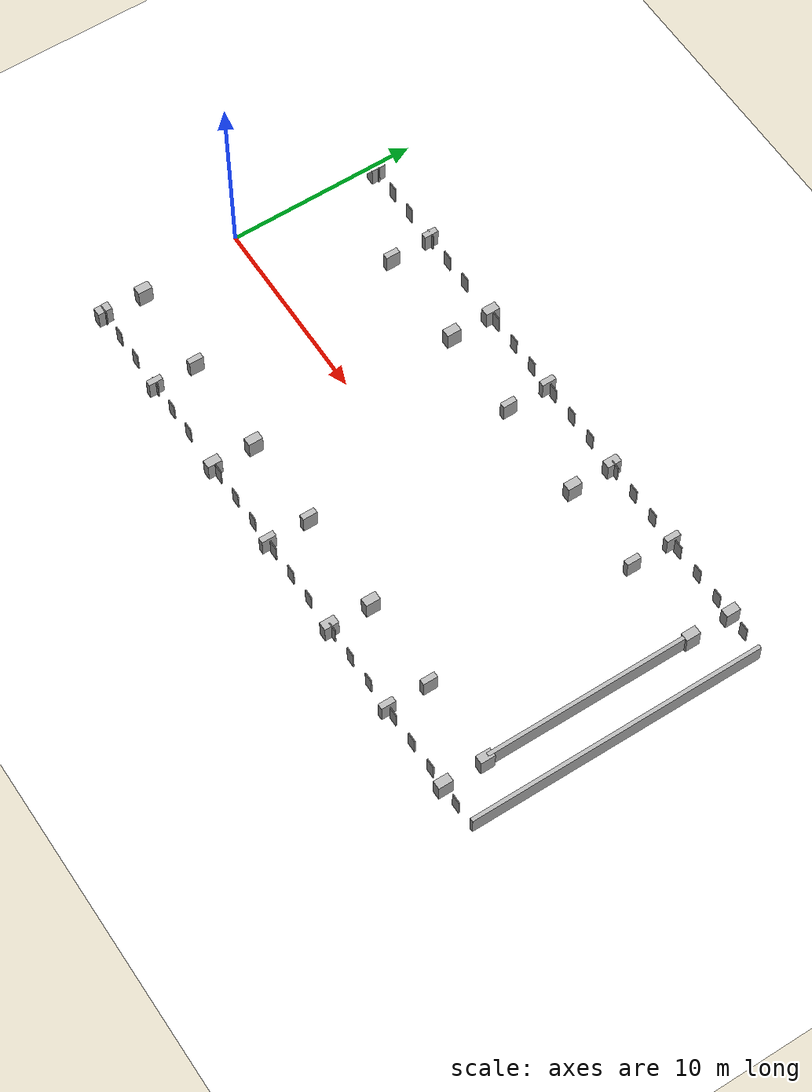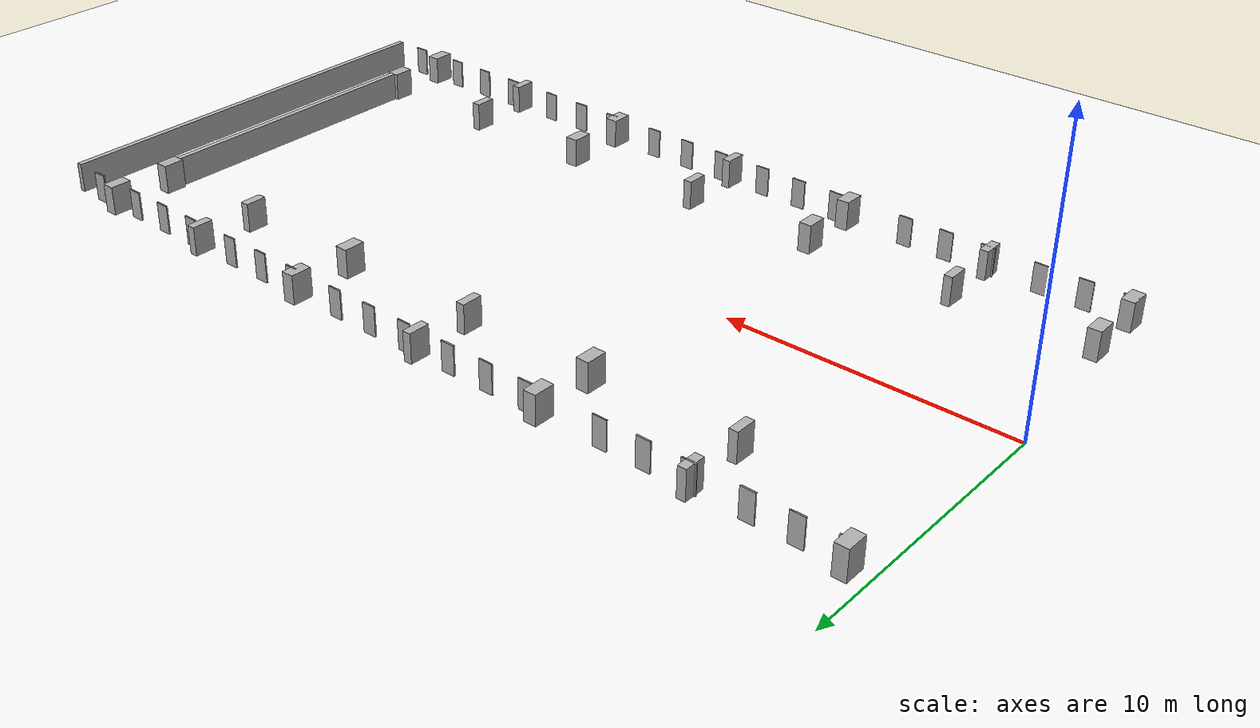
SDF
<sdf version="1.7">
 <world name="simple_corridor">
  <model name="ground_plane">
   <static>true</static>
   <link name="link">
    <collision name="collision">
     <geometry><plane><normal>0 0 1</normal><size>100 100</size></plane></geometry>
    </collision>
    <visual name="visual">
     <geometry><plane><normal>0 0 1</normal><size>100 100</size></plane></geometry>
     <material><ambient>1 1 1 1</ambient><diffuse>1 1 1 1</diffuse></material>
    </visual>
   </link>
  </model>
  <model name="wall_start_on">
   <static>true</static>
   <pose>30 0 0 0 0 0</pose>
   <link name="link">
    <collision name="collision"><geometry><box><size>0.2 10.8 2.0</size></box></geometry></collision>
    <visual name="visual">
     <geometry><box><size>0.2 10.8 2.0</size></box></geometry>
     <material><diffuse>0.7 0.7 0.7 1</diffuse></material>
    </visual>
   </link>
  </model>
  <model name="column_small_left_8">
   <static>true</static>
   <pose>5.45 5.5 0 0 0 0</pose>
   <link name="link">
    <collision name="collision"><geometry><box><size>0.3 0.75 2.0</size></box></geometry></collision>
    <visual name="visual">
     <geometry><box><size>0.3 0.75 2.0</size></box></geometry>
     <material><diffuse>0.7 0.7 0.7 1</diffuse></material>
    </visual>
   </link>
  </model>
  <model name="column_large_left_9">
   <static>true</static>
   <pose>10.7 5.5 0 0 0 0</pose>
   <link name="link">
    <collision name="collision"><geometry><box><size>0.45 0.75 2.0</size></box></geometry></collision>
    <visual name="visual">
     <geometry><box><size>0.45 0.75 2.0</size></box></geometry>
     <material><diffuse>0.7 0.7 0.7 1</diffuse></material>
    </visual>
   </link>
  </model>
  <model name="column_small_left_10">
   <static>true</static>
   <pose>15.5 5.5 0 0 0 0</pose>
   <link name="link">
    <collision name="collision"><geometry><box><size>0.3 0.75 2.0</size></box></geometry></collision>
    <visual name="visual">
     <geometry><box><size>0.3 0.75 2.0</size></box></geometry>
     <material><diffuse>0.7 0.7 0.7 1</diffuse></material>
    </visual>
   </link>
  </model>
  <model name="column_large_left_11">
   <static>true</static>
   <pose>20.75 5.5 0 0 0 0</pose>
   <link name="link">
    <collision name="collision"><geometry><box><size>0.45 0.75 2.0</size></box></geometry></collision>
    <visual name="visual">
     <geometry><box><size>0.45 0.75 2.0</size></box></geometry>
     <material><diffuse>0.7 0.7 0.7 1</diffuse></material>
    </visual>
   </link>
  </model>
  <model name="column_small_left_12">
   <static>true</static>
   <pose>25.5 5.5 0 0 0 0</pose>
   <link name="link">
    <collision name="collision"><geometry><box><size>0.3 0.75 2.0</size></box></geometry></collision>
    <visual name="visual">
     <geometry><box><size>0.3 0.75 2.0</size></box></geometry>
     <material><diffuse>0.7 0.7 0.7 1</diffuse></material>
    </visual>
   </link>
  </model>
  <model name="column_large_left_13">
   <static>true</static>
   <pose>30 5.5 0 0 0 0</pose>
   <link name="link">
    <collision name="collision"><geometry><box><size>0.45 0.75 2.0</size></box></geometry></collision>
    <visual name="visual">
     <geometry><box><size>0.45 0.75 2.0</size></box></geometry>
     <material><diffuse>0.7 0.7 0.7 1</diffuse></material>
    </visual>
   </link>
  </model>
  <model name="column_large_right_7">
   <static>true</static>
   <pose>0.65 -5.5 0 0 0 0</pose>
   <link name="link">
    <collision name="collision"><geometry><box><size>0.45 0.75 2.0</size></box></geometry></collision>
    <visual name="visual">
     <geometry><box><size>0.45 0.75 2.0</size></box></geometry>
     <material><diffuse>0.7 0.7 0.7 1</diffuse></material>
    </visual>
   </link>
  </model>
  <model name="column_small_right_8">
   <static>true</static>
   <pose>5.45 -5.5 0 0 0 0</pose>
   <link name="link">
    <collision name="collision"><geometry><box><size>0.3 0.75 2.0</size></box></geometry></collision>
    <visual name="visual">
     <geometry><box><size>0.3 0.75 2.0</size></box></geometry>
     <material><diffuse>0.7 0.7 0.7 1</diffuse></material>
    </visual>
   </link>
  </model>
  <model name="column_large_right_9">
   <static>true</static>
   <pose>10.7 -5.5 0 0 0 0</pose>
   <link name="link">
    <collision name="collision"><geometry><box><size>0.45 0.75 2.0</size></box></geometry></collision>
    <visual name="visual">
     <geometry><box><size>0.45 0.75 2.0</size></box></geometry>
     <material><diffuse>0.7 0.7 0.7 1</diffuse></material>
    </visual>
   </link>
  </model>
  <model name="column_small_right_10">
   <static>true</static>
   <pose>15.5 -5.5 0 0 0 0</pose>
   <link name="link">
    <collision name="collision"><geometry><box><size>0.3 0.75 2.0</size></box></geometry></collision>
    <visual name="visual">
     <geometry><box><size>0.3 0.75 2.0</size></box></geometry>
     <material><diffuse>0.7 0.7 0.7 1</diffuse></material>
    </visual>
   </link>
  </model>
  <model name="column_large_right_11">
   <static>true</static>
   <pose>20.75 -5.5 0 0 0 0</pose>
   <link name="link">
    <collision name="collision"><geometry><box><size>0.45 0.75 2.0</size></box></geometry></collision>
    <visual name="visual">
     <geometry><box><size>0.45 0.75 2.0</size></box></geometry>
     <material><diffuse>0.7 0.7 0.7 1</diffuse></material>
    </visual>
   </link>
  </model>
  <model name="column_small_right_12">
   <static>true</static>
   <pose>25.5 -5.5 0 0 0 0</pose>
   <link name="link">
    <collision name="collision"><geometry><box><size>0.3 0.75 2.0</size></box></geometry></collision>
    <visual name="visual">
     <geometry><box><size>0.3 0.75 2.0</size></box></geometry>
     <material><diffuse>0.7 0.7 0.7 1</diffuse></material>
    </visual>
   </link>
  </model>
  <model name="column_large_right_13">
   <static>true</static>
   <pose>30 -5.5 0 0 0 0</pose>
   <link name="link">
    <collision name="collision"><geometry><box><size>0.45 0.75 2.0</size></box></geometry></collision>
    <visual name="visual">
     <geometry><box><size>0.45 0.75 2.0</size></box></geometry>
     <material><diffuse>0.7 0.7 0.7 1</diffuse></material>
    </visual>
   </link>
  </model>
  <model name="ban_large_left_7">
   <static>true</static>
   <pose>0.65 7.7 0 0 0 0</pose>
   <link name="link">
    <collision name="collision"><geometry><box><size>0.45 0.75 2.0</size></box></geometry></collision>
    <visual name="visual">
     <geometry><box><size>0.45 0.75 2.0</size></box></geometry>
     <material><diffuse>0.7 0.7 0.7 1</diffuse></material>
    </visual>
   </link>
  </model>
  <model name="ban_small_left_8">
   <static>true</static>
   <pose>5.45 7.7 0 0 0 0</pose>
   <link name="link">
    <collision name="collision"><geometry><box><size>0.3 0.75 2.0</size></box></geometry></collision>
    <visual name="visual">
     <geometry><box><size>0.3 0.75 2.0</size></box></geometry>
     <material><diffuse>0.7 0.7 0.7 1</diffuse></material>
    </visual>
   </link>
  </model>
  <model name="ban_large_left_9">
   <static>true</static>
   <pose>10.7 7.7 0 0 0 0</pose>
   <link name="link">
    <collision name="collision"><geometry><box><size>0.45 0.75 2.0</size></box></geometry></collision>
    <visual name="visual">
     <geometry><box><size>0.45 0.75 2.0</size></box></geometry>
     <material><diffuse>0.7 0.7 0.7 1</diffuse></material>
    </visual>
   </link>
  </model>
  <model name="ban_small_left_10">
   <static>true</static>
   <pose>15.5 7.7 0 0 0 0</pose>
   <link name="link">
    <collision name="collision"><geometry><box><size>0.3 0.75 2.0</size></box></geometry></collision>
    <visual name="visual">
     <geometry><box><size>0.3 0.75 2.0</size></box></geometry>
     <material><diffuse>0.7 0.7 0.7 1</diffuse></material>
    </visual>
   </link>
  </model>
  <model name="ban_large_left_11">
   <static>true</static>
   <pose>20.75 7.7 0 0 0 0</pose>
   <link name="link">
    <collision name="collision"><geometry><box><size>0.45 0.75 2.0</size></box></geometry></collision>
    <visual name="visual">
     <geometry><box><size>0.45 0.75 2.0</size></box></geometry>
     <material><diffuse>0.7 0.7 0.7 1</diffuse></material>
    </visual>
   </link>
  </model>
  <model name="ban_small_left_12">
   <static>true</static>
   <pose>25.5 7.7 0 0 0 0</pose>
   <link name="link">
    <collision name="collision"><geometry><box><size>0.3 0.75 2.0</size></box></geometry></collision>
    <visual name="visual">
     <geometry><box><size>0.3 0.75 2.0</size></box></geometry>
     <material><diffuse>0.7 0.7 0.7 1</diffuse></material>
    </visual>
   </link>
  </model>
  <model name="ban_large_left_13">
   <static>true</static>
   <pose>30 7.7 0 0 0 0</pose>
   <link name="link">
    <collision name="collision"><geometry><box><size>0.45 0.75 2.0</size></box></geometry></collision>
    <visual name="visual">
     <geometry><box><size>0.45 0.75 2.0</size></box></geometry>
     <material><diffuse>0.7 0.7 0.7 1</diffuse></material>
    </visual>
   </link>
  </model>
  <model name="ban_large_right_7">
   <static>true</static>
   <pose>0.65 -7.7 0 0 0 0</pose>
   <link name="link">
    <collision name="collision"><geometry><box><size>0.45 0.75 2.0</size></box></geometry></collision>
    <visual name="visual">
     <geometry><box><size>0.45 0.75 2.0</size></box></geometry>
     <material><diffuse>0.7 0.7 0.7 1</diffuse></material>
    </visual>
   </link>
  </model>
  <model name="ban_small_right_8">
   <static>true</static>
   <pose>5.45 -7.7 0 0 0 0</pose>
   <link name="link">
    <collision name="collision"><geometry><box><size>0.3 0.75 2.0</size></box></geometry></collision>
    <visual name="visual">
     <geometry><box><size>0.3 0.75 2.0</size></box></geometry>
     <material><diffuse>0.7 0.7 0.7 1</diffuse></material>
    </visual>
   </link>
  </model>
  <model name="ban_large_right_9">
   <static>true</static>
   <pose>10.7 -7.7 0 0 0 0</pose>
   <link name="link">
    <collision name="collision"><geometry><box><size>0.45 0.75 2.0</size></box></geometry></collision>
    <visual name="visual">
     <geometry><box><size>0.45 0.75 2.0</size></box></geometry>
     <material><diffuse>0.7 0.7 0.7 1</diffuse></material>
    </visual>
   </link>
  </model>
  <model name="ban_small_right_10">
   <static>true</static>
   <pose>15.5 -7.7 0 0 0 0</pose>
   <link name="link">
    <collision name="collision"><geometry><box><size>0.3 0.75 2.0</size></box></geometry></collision>
    <visual name="visual">
     <geometry><box><size>0.3 0.75 2.0</size></box></geometry>
     <material><diffuse>0.7 0.7 0.7 1</diffuse></material>
    </visual>
   </link>
  </model>
  <model name="ban_large_right_11">
   <static>true</static>
   <pose>20.75 -7.7 0 0 0 0</pose>
   <link name="link">
    <collision name="collision"><geometry><box><size>0.45 0.75 2.0</size></box></geometry></collision>
    <visual name="visual">
     <geometry><box><size>0.45 0.75 2.0</size></box></geometry>
     <material><diffuse>0.7 0.7 0.7 1</diffuse></material>
    </visual>
   </link>
  </model>
  <model name="ban_small_right_12">
   <static>true</static>
   <pose>25.5 -7.7 0 0 0 0</pose>
   <link name="link">
    <collision name="collision"><geometry><box><size>0.3 0.75 2.0</size></box></geometry></collision>
    <visual name="visual">
     <geometry><box><size>0.3 0.75 2.0</size></box></geometry>
     <material><diffuse>0.7 0.7 0.7 1</diffuse></material>
    </visual>
   </link>
  </model>
  <model name="ban_large_right_13">
   <static>true</static>
   <pose>30 -7.7 0 0 0 0</pose>
   <link name="link">
    <collision name="collision"><geometry><box><size>0.45 0.75 2.0</size></box></geometry></collision>
    <visual name="visual">
     <geometry><box><size>0.45 0.75 2.0</size></box></geometry>
     <material><diffuse>0.7 0.7 0.7 1</diffuse></material>
    </visual>
   </link>
  </model>
  <model name="bar_left_19">
   <static>true</static>
   <pose>0.7 7.7 0 0 0 0</pose>
   <link name="link">
    <collision name="collision"><geometry><box><size>0.5 0.05 2.0</size></box></geometry></collision>
    <visual name="visual">
     <geometry><box><size>0.5 0.05 2.0</size></box></geometry>
     <material><diffuse>0.7 0.7 0.7 1</diffuse></material>
    </visual>
   </link>
  </model>
  <model name="bar_left_20">
   <static>true</static>
   <pose>2.15 7.7 0 0 0 0</pose>
   <link name="link">
    <collision name="collision"><geometry><box><size>0.5 0.05 2.0</size></box></geometry></collision>
    <visual name="visual">
     <geometry><box><size>0.5 0.05 2.0</size></box></geometry>
     <material><diffuse>0.7 0.7 0.7 1</diffuse></material>
    </visual>
   </link>
  </model>
  <model name="bar_left_21">
   <static>true</static>
   <pose>3.65 7.7 0 0 0 0</pose>
   <link name="link">
    <collision name="collision"><geometry><box><size>0.5 0.05 2.0</size></box></geometry></collision>
    <visual name="visual">
     <geometry><box><size>0.5 0.05 2.0</size></box></geometry>
     <material><diffuse>0.7 0.7 0.7 1</diffuse></material>
    </visual>
   </link>
  </model>
  <model name="bar_left_22">
   <static>true</static>
   <pose>5.5 7.7 0 0 0 0</pose>
   <link name="link">
    <collision name="collision"><geometry><box><size>0.5 0.05 2.0</size></box></geometry></collision>
    <visual name="visual">
     <geometry><box><size>0.5 0.05 2.0</size></box></geometry>
     <material><diffuse>0.7 0.7 0.7 1</diffuse></material>
    </visual>
   </link>
  </model>
  <model name="bar_left_23">
   <static>true</static>
   <pose>7 7.7 0 0 0 0</pose>
   <link name="link">
    <collision name="collision"><geometry><box><size>0.5 0.05 2.0</size></box></geometry></collision>
    <visual name="visual">
     <geometry><box><size>0.5 0.05 2.0</size></box></geometry>
     <material><diffuse>0.7 0.7 0.7 1</diffuse></material>
    </visual>
   </link>
  </model>
  <model name="bar_left_24">
   <static>true</static>
   <pose>8.5 7.7 0 0 0 0</pose>
   <link name="link">
    <collision name="collision"><geometry><box><size>0.5 0.05 2.0</size></box></geometry></collision>
    <visual name="visual">
     <geometry><box><size>0.5 0.05 2.0</size></box></geometry>
     <material><diffuse>0.7 0.7 0.7 1</diffuse></material>
    </visual>
   </link>
  </model>
  <model name="bar_left_25">
   <static>true</static>
   <pose>11.2 7.7 0 0 0 0</pose>
   <link name="link">
    <collision name="collision"><geometry><box><size>0.5 0.05 2.0</size></box></geometry></collision>
    <visual name="visual">
     <geometry><box><size>0.5 0.05 2.0</size></box></geometry>
     <material><diffuse>0.7 0.7 0.7 1</diffuse></material>
    </visual>
   </link>
  </model>
  <model name="bar_left_26">
   <static>true</static>
   <pose>12.7 7.7 0 0 0 0</pose>
   <link name="link">
    <collision name="collision"><geometry><box><size>0.5 0.05 2.0</size></box></geometry></collision>
    <visual name="visual">
     <geometry><box><size>0.5 0.05 2.0</size></box></geometry>
     <material><diffuse>0.7 0.7 0.7 1</diffuse></material>
    </visual>
   </link>
  </model>
  <model name="bar_left_27">
   <static>true</static>
   <pose>14.2 7.7 0 0 0 0</pose>
   <link name="link">
    <collision name="collision"><geometry><box><size>0.5 0.05 2.0</size></box></geometry></collision>
    <visual name="visual">
     <geometry><box><size>0.5 0.05 2.0</size></box></geometry>
     <material><diffuse>0.7 0.7 0.7 1</diffuse></material>
    </visual>
   </link>
  </model>
  <model name="bar_left_28">
   <static>true</static>
   <pose>16 7.7 0 0 0 0</pose>
   <link name="link">
    <collision name="collision"><geometry><box><size>0.5 0.05 2.0</size></box></geometry></collision>
    <visual name="visual">
     <geometry><box><size>0.5 0.05 2.0</size></box></geometry>
     <material><diffuse>0.7 0.7 0.7 1</diffuse></material>
    </visual>
   </link>
  </model>
  <model name="bar_left_29">
   <static>true</static>
   <pose>17.5 7.7 0 0 0 0</pose>
   <link name="link">
    <collision name="collision"><geometry><box><size>0.5 0.05 2.0</size></box></geometry></collision>
    <visual name="visual">
     <geometry><box><size>0.5 0.05 2.0</size></box></geometry>
     <material><diffuse>0.7 0.7 0.7 1</diffuse></material>
    </visual>
   </link>
  </model>
  <model name="bar_left_30">
   <static>true</static>
   <pose>19 7.7 0 0 0 0</pose>
   <link name="link">
    <collision name="collision"><geometry><box><size>0.5 0.05 2.0</size></box></geometry></collision>
    <visual name="visual">
     <geometry><box><size>0.5 0.05 2.0</size></box></geometry>
     <material><diffuse>0.7 0.7 0.7 1</diffuse></material>
    </visual>
   </link>
  </model>
  <model name="bar_left_31">
   <static>true</static>
   <pose>21 7.7 0 0 0 0</pose>
   <link name="link">
    <collision name="collision"><geometry><box><size>0.5 0.05 2.0</size></box></geometry></collision>
    <visual name="visual">
     <geometry><box><size>0.5 0.05 2.0</size></box></geometry>
     <material><diffuse>0.7 0.7 0.7 1</diffuse></material>
    </visual>
   </link>
  </model>
  <model name="bar_left_32">
   <static>true</static>
   <pose>22.5 7.7 0 0 0 0</pose>
   <link name="link">
    <collision name="collision"><geometry><box><size>0.5 0.05 2.0</size></box></geometry></collision>
    <visual name="visual">
     <geometry><box><size>0.5 0.05 2.0</size></box></geometry>
     <material><diffuse>0.7 0.7 0.7 1</diffuse></material>
    </visual>
   </link>
  </model>
  <model name="bar_left_33">
   <static>true</static>
   <pose>24 7.7 0 0 0 0</pose>
   <link name="link">
    <collision name="collision"><geometry><box><size>0.5 0.05 2.0</size></box></geometry></collision>
    <visual name="visual">
     <geometry><box><size>0.5 0.05 2.0</size></box></geometry>
     <material><diffuse>0.7 0.7 0.7 1</diffuse></material>
    </visual>
   </link>
  </model>
  <model name="bar_left_34">
   <static>true</static>
   <pose>26 7.7 0 0 0 0</pose>
   <link name="link">
    <collision name="collision"><geometry><box><size>0.5 0.05 2.0</size></box></geometry></collision>
    <visual name="visual">
     <geometry><box><size>0.5 0.05 2.0</size></box></geometry>
     <material><diffuse>0.7 0.7 0.7 1</diffuse></material>
    </visual>
   </link>
  </model>
  <model name="bar_left_35">
   <static>true</static>
   <pose>27.5 7.7 0 0 0 0</pose>
   <link name="link">
    <collision name="collision"><geometry><box><size>0.5 0.05 2.0</size></box></geometry></collision>
    <visual name="visual">
     <geometry><box><size>0.5 0.05 2.0</size></box></geometry>
     <material><diffuse>0.7 0.7 0.7 1</diffuse></material>
    </visual>
   </link>
  </model>
  <model name="bar_left_36">
   <static>true</static>
   <pose>29 7.7 0 0 0 0</pose>
   <link name="link">
    <collision name="collision"><geometry><box><size>0.5 0.05 2.0</size></box></geometry></collision>
    <visual name="visual">
     <geometry><box><size>0.5 0.05 2.0</size></box></geometry>
     <material><diffuse>0.7 0.7 0.7 1</diffuse></material>
    </visual>
   </link>
  </model>
  <model name="bar_left_37">
   <static>true</static>
   <pose>31 7.7 0 0 0 0</pose>
   <link name="link">
    <collision name="collision"><geometry><box><size>0.5 0.05 2.0</size></box></geometry></collision>
    <visual name="visual">
     <geometry><box><size>0.5 0.05 2.0</size></box></geometry>
     <material><diffuse>0.7 0.7 0.7 1</diffuse></material>
    </visual>
   </link>
  </model>
  <model name="bar_right_19">
   <static>true</static>
   <pose>0.7 -7.7 0 0 0 0</pose>
   <link name="link">
    <collision name="collision"><geometry><box><size>0.5 0.05 2.0</size></box></geometry></collision>
    <visual name="visual">
     <geometry><box><size>0.5 0.05 2.0</size></box></geometry>
     <material><diffuse>0.7 0.7 0.7 1</diffuse></material>
    </visual>
   </link>
  </model>
  <model name="bar_right_20">
   <static>true</static>
   <pose>2.15 -7.7 0 0 0 0</pose>
   <link name="link">
    <collision name="collision"><geometry><box><size>0.5 0.05 2.0</size></box></geometry></collision>
    <visual name="visual">
     <geometry><box><size>0.5 0.05 2.0</size></box></geometry>
     <material><diffuse>0.7 0.7 0.7 1</diffuse></material>
    </visual>
   </link>
  </model>
  <model name="bar_right_21">
   <static>true</static>
   <pose>3.65 -7.7 0 0 0 0</pose>
   <link name="link">
    <collision name="collision"><geometry><box><size>0.5 0.05 2.0</size></box></geometry></collision>
    <visual name="visual">
     <geometry><box><size>0.5 0.05 2.0</size></box></geometry>
     <material><diffuse>0.7 0.7 0.7 1</diffuse></material>
    </visual>
   </link>
  </model>
  <model name="bar_right_22">
   <static>true</static>
   <pose>5.5 -7.7 0 0 0 0</pose>
   <link name="link">
    <collision name="collision"><geometry><box><size>0.5 0.05 2.0</size></box></geometry></collision>
    <visual name="visual">
     <geometry><box><size>0.5 0.05 2.0</size></box></geometry>
     <material><diffuse>0.7 0.7 0.7 1</diffuse></material>
    </visual>
   </link>
  </model>
  <model name="bar_right_23">
   <static>true</static>
   <pose>7 -7.7 0 0 0 0</pose>
   <link name="link">
    <collision name="collision"><geometry><box><size>0.5 0.05 2.0</size></box></geometry></collision>
    <visual name="visual">
     <geometry><box><size>0.5 0.05 2.0</size></box></geometry>
     <material><diffuse>0.7 0.7 0.7 1</diffuse></material>
    </visual>
   </link>
  </model>
  <model name="bar_right_24">
   <static>true</static>
   <pose>8.5 -7.7 0 0 0 0</pose>
   <link name="link">
    <collision name="collision"><geometry><box><size>0.5 0.05 2.0</size></box></geometry></collision>
    <visual name="visual">
     <geometry><box><size>0.5 0.05 2.0</size></box></geometry>
     <material><diffuse>0.7 0.7 0.7 1</diffuse></material>
    </visual>
   </link>
  </model>
  <model name="bar_right_25">
   <static>true</static>
   <pose>11.2 -7.7 0 0 0 0</pose>
   <link name="link">
    <collision name="collision"><geometry><box><size>0.5 0.05 2.0</size></box></geometry></collision>
    <visual name="visual">
     <geometry><box><size>0.5 0.05 2.0</size></box></geometry>
     <material><diffuse>0.7 0.7 0.7 1</diffuse></material>
    </visual>
   </link>
  </model>
  <model name="bar_right_26">
   <static>true</static>
   <pose>12.7 -7.7 0 0 0 0</pose>
   <link name="link">
    <collision name="collision"><geometry><box><size>0.5 0.05 2.0</size></box></geometry></collision>
    <visual name="visual">
     <geometry><box><size>0.5 0.05 2.0</size></box></geometry>
     <material><diffuse>0.7 0.7 0.7 1</diffuse></material>
    </visual>
   </link>
  </model>
  <model name="bar_right_27">
   <static>true</static>
   <pose>14.2 -7.7 0 0 0 0</pose>
   <link name="link">
    <collision name="collision"><geometry><box><size>0.5 0.05 2.0</size></box></geometry></collision>
    <visual name="visual">
     <geometry><box><size>0.5 0.05 2.0</size></box></geometry>
     <material><diffuse>0.7 0.7 0.7 1</diffuse></material>
    </visual>
   </link>
  </model>
  <model name="bar_right_28">
   <static>true</static>
   <pose>16 -7.7 0 0 0 0</pose>
   <link name="link">
    <collision name="collision"><geometry><box><size>0.5 0.05 2.0</size></box></geometry></collision>
    <visual name="visual">
     <geometry><box><size>0.5 0.05 2.0</size></box></geometry>
     <material><diffuse>0.7 0.7 0.7 1</diffuse></material>
    </visual>
   </link>
  </model>
  <model name="bar_right_29">
   <static>true</static>
   <pose>17.5 -7.7 0 0 0 0</pose>
   <link name="link">
    <collision name="collision"><geometry><box><size>0.5 0.05 2.0</size></box></geometry></collision>
    <visual name="visual">
     <geometry><box><size>0.5 0.05 2.0</size></box></geometry>
     <material><diffuse>0.7 0.7 0.7 1</diffuse></material>
    </visual>
   </link>
  </model>
  <model name="bar_right_30">
   <static>true</static>
   <pose>19 -7.7 0 0 0 0</pose>
   <link name="link">
    <collision name="collision"><geometry><box><size>0.5 0.05 2.0</size></box></geometry></collision>
    <visual name="visual">
     <geometry><box><size>0.5 0.05 2.0</size></box></geometry>
     <material><diffuse>0.7 0.7 0.7 1</diffuse></material>
    </visual>
   </link>
  </model>
  <model name="bar_right_31">
   <static>true</static>
   <pose>21 -7.7 0 0 0 0</pose>
   <link name="link">
    <collision name="collision"><geometry><box><size>0.5 0.05 2.0</size></box></geometry></collision>
    <visual name="visual">
     <geometry><box><size>0.5 0.05 2.0</size></box></geometry>
     <material><diffuse>0.7 0.7 0.7 1</diffuse></material>
    </visual>
   </link>
  </model>
  <model name="bar_right_32">
   <static>true</static>
   <pose>22.5 -7.7 0 0 0 0</pose>
   <link name="link">
    <collision name="collision"><geometry><box><size>0.5 0.05 2.0</size></box></geometry></collision>
    <visual name="visual">
     <geometry><box><size>0.5 0.05 2.0</size></box></geometry>
     <material><diffuse>0.7 0.7 0.7 1</diffuse></material>
    </visual>
   </link>
  </model>
  <model name="bar_right_33">
   <static>true</static>
   <pose>24 -7.7 0 0 0 0</pose>
   <link name="link">
    <collision name="collision"><geometry><box><size>0.5 0.05 2.0</size></box></geometry></collision>
    <visual name="visual">
     <geometry><box><size>0.5 0.05 2.0</size></box></geometry>
     <material><diffuse>0.7 0.7 0.7 1</diffuse></material>
    </visual>
   </link>
  </model>
  <model name="bar_right_34">
   <static>true</static>
   <pose>26 -7.7 0 0 0 0</pose>
   <link name="link">
    <collision name="collision"><geometry><box><size>0.5 0.05 2.0</size></box></geometry></collision>
    <visual name="visual">
     <geometry><box><size>0.5 0.05 2.0</size></box></geometry>
     <material><diffuse>0.7 0.7 0.7 1</diffuse></material>
    </visual>
   </link>
  </model>
  <model name="bar_right_35">
   <static>true</static>
   <pose>27.5 -7.7 0 0 0 0</pose>
   <link name="link">
    <collision name="collision"><geometry><box><size>0.5 0.05 2.0</size></box></geometry></collision>
    <visual name="visual">
     <geometry><box><size>0.5 0.05 2.0</size></box></geometry>
     <material><diffuse>0.7 0.7 0.7 1</diffuse></material>
    </visual>
   </link>
  </model>
  <model name="bar_right_36">
   <static>true</static>
   <pose>29 -7.7 0 0 0 0</pose>
   <link name="link">
    <collision name="collision"><geometry><box><size>0.5 0.05 2.0</size></box></geometry></collision>
    <visual name="visual">
     <geometry><box><size>0.5 0.05 2.0</size></box></geometry>
     <material><diffuse>0.7 0.7 0.7 1</diffuse></material>
    </visual>
   </link>
  </model>
  <model name="bar_right_37">
   <static>true</static>
   <pose>31 -7.7 0 0 0 0</pose>
   <link name="link">
    <collision name="collision"><geometry><box><size>0.5 0.05 2.0</size></box></geometry></collision>
    <visual name="visual">
     <geometry><box><size>0.5 0.05 2.0</size></box></geometry>
     <material><diffuse>0.7 0.7 0.7 1</diffuse></material>
    </visual>
   </link>
  </model>
  <model name="wall_start_on_opposite">
   <static>true</static>
   <pose>32.2 0 0 0 0 0</pose>
   <link name="link">
    <collision name="collision"><geometry><box><size>0.2 15.4 2.0</size></box></geometry></collision>
    <visual name="visual">
     <geometry><box><size>0.2 15.4 2.0</size></box></geometry>
     <material><diffuse>0.7 0.7 0.7 1</diffuse></material>
    </visual>
   </link>
  </model>
 </world>
</sdf>
